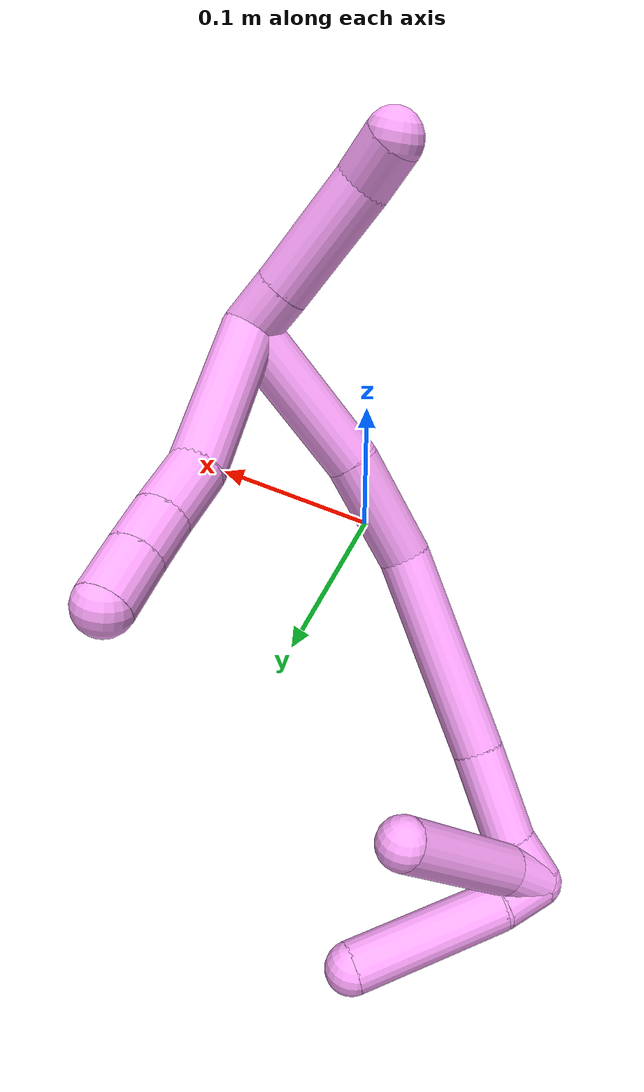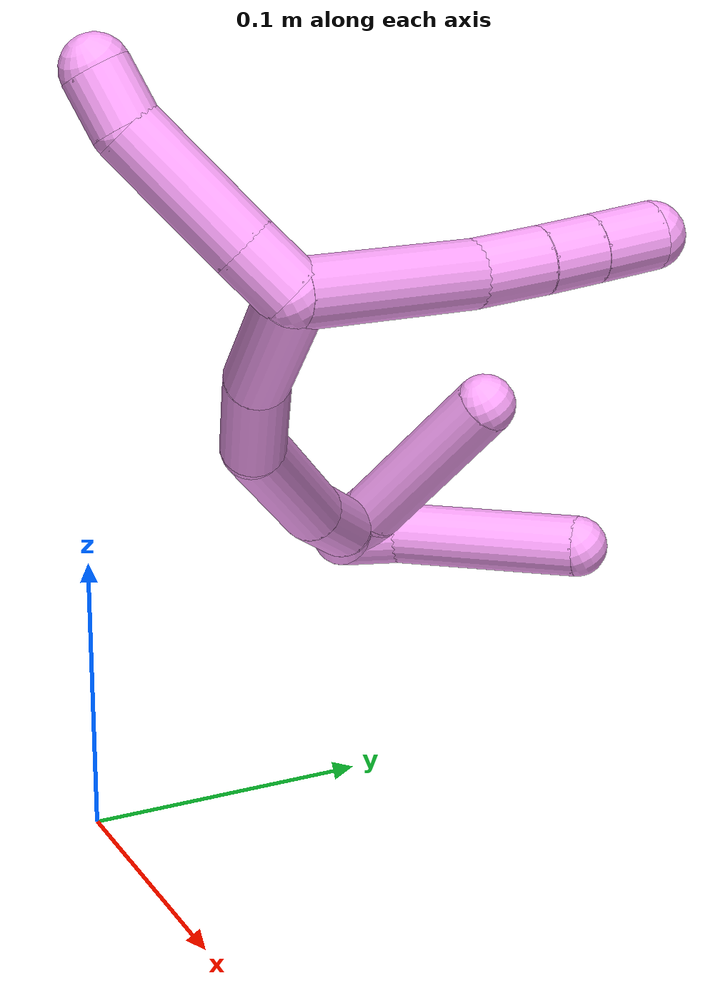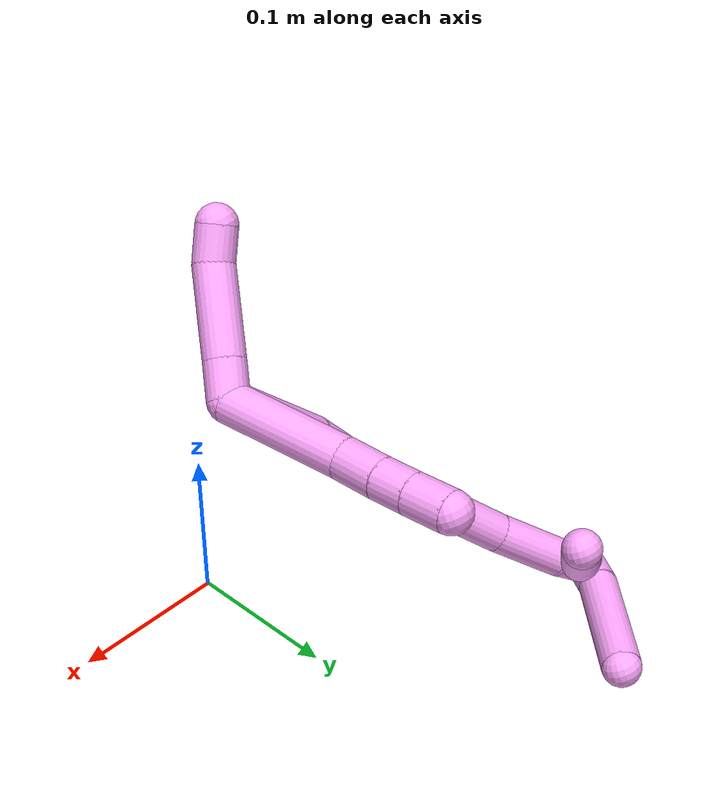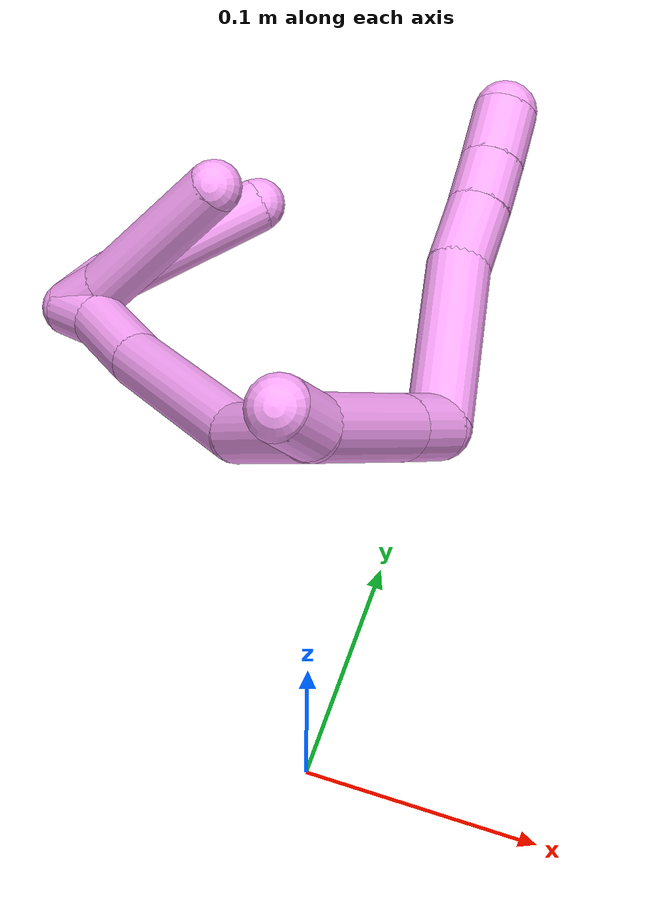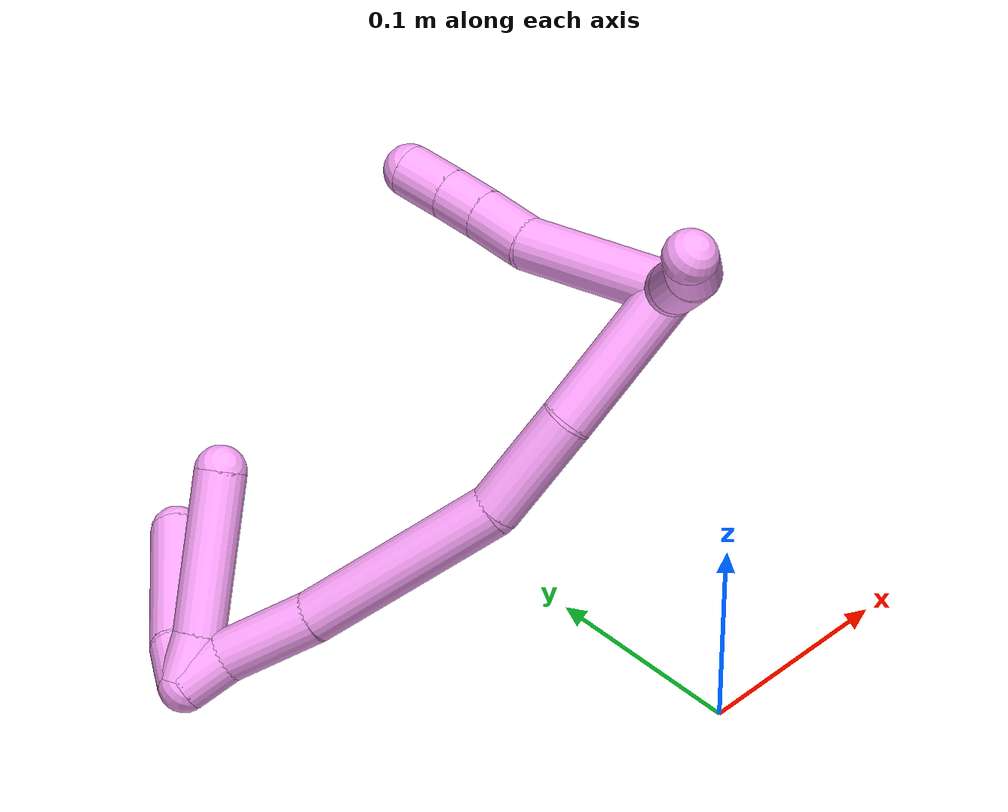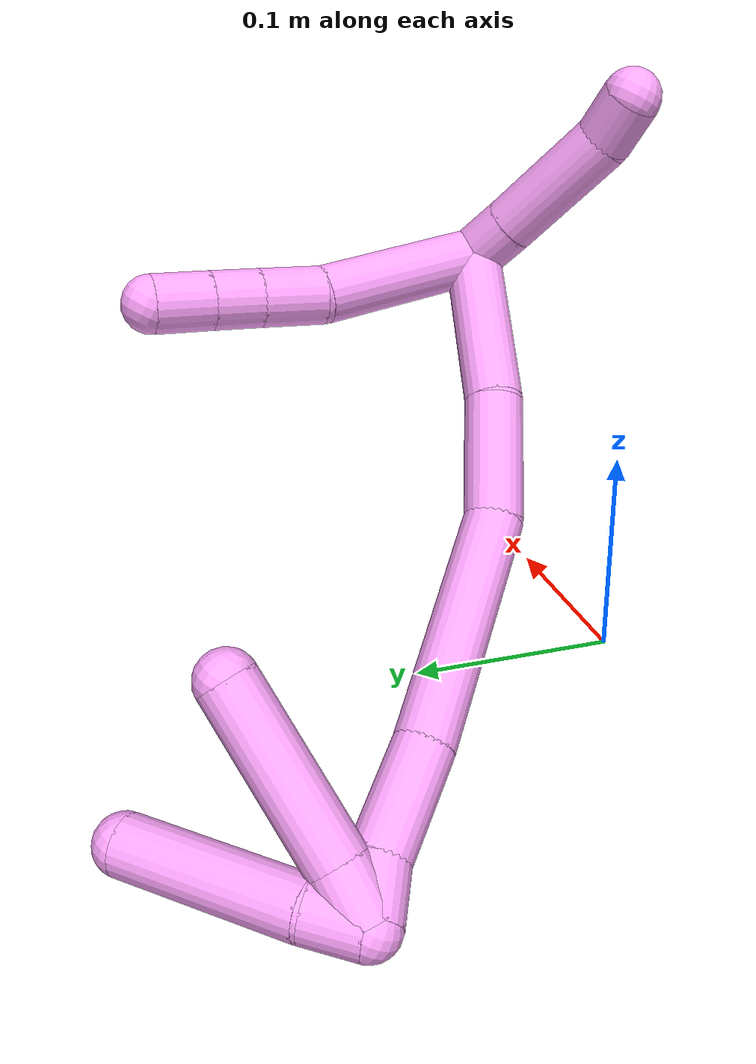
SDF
<sdf version="1.7">
 <world name="default">
  <model name="4">
   <static>0</static>
   <link name="4">
    <collision name="collision-cylinder-e_1_2_8">
     <pose>-0.001969 0.031646 0.021257 -0.97932 -0.051602 0.027506</pose>
     <geometry><cylinder><radius>0.0125</radius><length>0.076347</length></cylinder></geometry>
     <surface>
      <friction><ode><mu>1.16</mu><mu2>1.16</mu2><slip1>0</slip1><slip2>0</slip2></ode></friction>
      <contact><ode><kp>1e+06</kp><kd>1</kd><max_vel>0</max_vel><min_depth>0.001</min_depth></ode></contact>
     </surface>
    </collision>
    <visual name="visual-cylinder-e_1_2_8">
     <pose>-0.001969 0.031646 0.021257 -0.97932 -0.051602 0.027506</pose>
     <geometry><cylinder><radius>0.0125</radius><length>0.076347</length></cylinder></geometry>
     <material><ambient>1 0.65098 0.996078 1</ambient></material>
    </visual>
    <collision name="collision-cylinder-e_2_8_9">
     <pose>-0.007293 0.075173 0.048482 -1.10526 -0.247205 0.15294</pose>
     <geometry><cylinder><radius>0.0125</radius><length>0.027426</length></cylinder></geometry>
     <surface>
      <friction><ode><mu>1.16</mu><mu2>1.16</mu2><slip1>0</slip1><slip2>0</slip2></ode></friction>
      <contact><ode><kp>1e+06</kp><kd>1</kd><max_vel>0</max_vel><min_depth>0.001</min_depth></ode></contact>
     </surface>
    </collision>
    <visual name="visual-cylinder-e_2_8_9">
     <pose>-0.007293 0.075173 0.048482 -1.10526 -0.247205 0.15294</pose>
     <geometry><cylinder><radius>0.0125</radius><length>0.027426</length></cylinder></geometry>
     <material><ambient>1 0.65098 0.996078 1</ambient></material>
    </visual>
    <collision name="collision-cylinder-e_3_9_10">
     <pose>-0.012828 0.096362 0.059026 -1.11395 -0.207072 0.129236</pose>
     <geometry><cylinder><radius>0.0125</radius><length>0.021196</length></cylinder></geometry>
     <surface>
      <friction><ode><mu>1.16</mu><mu2>1.16</mu2><slip1>0</slip1><slip2>0</slip2></ode></friction>
      <contact><ode><kp>1e+06</kp><kd>1</kd><max_vel>0</max_vel><min_depth>0.001</min_depth></ode></contact>
     </surface>
    </collision>
    <visual name="visual-cylinder-e_3_9_10">
     <pose>-0.012828 0.096362 0.059026 -1.11395 -0.207072 0.129236</pose>
     <geometry><cylinder><radius>0.0125</radius><length>0.021196</length></cylinder></geometry>
     <material><ambient>1 0.65098 0.996078 1</ambient></material>
    </visual>
    <collision name="collision-cylinder-e_4_10_6">
     <pose>-0.017335 0.116708 0.069021 -1.11431 -0.187131 0.11679</pose>
     <geometry><cylinder><radius>0.0125</radius><length>0.025032</length></cylinder></geometry>
     <surface>
      <friction><ode><mu>1.16</mu><mu2>1.16</mu2><slip1>0</slip1><slip2>0</slip2></ode></friction>
      <contact><ode><kp>1e+06</kp><kd>1</kd><max_vel>0</max_vel><min_depth>0.001</min_depth></ode></contact>
     </surface>
    </collision>
    <visual name="visual-cylinder-e_4_10_6">
     <pose>-0.017335 0.116708 0.069021 -1.11431 -0.187131 0.11679</pose>
     <geometry><cylinder><radius>0.0125</radius><length>0.025032</length></cylinder></geometry>
     <material><ambient>1 0.65098 0.996078 1</ambient></material>
    </visual>
    <collision name="collision-cylinder-e_1_2_11">
     <pose>0.005895 -0.000577 -0.00991 3.08339 0.535895 2.93034</pose>
     <geometry><cylinder><radius>0.0125</radius><length>0.02309</length></cylinder></geometry>
     <surface>
      <friction><ode><mu>1.16</mu><mu2>1.16</mu2><slip1>0</slip1><slip2>0</slip2></ode></friction>
      <contact><ode><kp>1e+06</kp><kd>1</kd><max_vel>0</max_vel><min_depth>0.001</min_depth></ode></contact>
     </surface>
    </collision>
    <visual name="visual-cylinder-e_1_2_11">
     <pose>0.005895 -0.000577 -0.00991 3.08339 0.535895 2.93034</pose>
     <geometry><cylinder><radius>0.0125</radius><length>0.02309</length></cylinder></geometry>
     <material><ambient>1 0.65098 0.996078 1</ambient></material>
    </visual>
    <collision name="collision-cylinder-e_2_11_12">
     <pose>0.025171 -0.002336 -0.043824 3.09241 0.508001 2.95267</pose>
     <geometry><cylinder><radius>0.0125</radius><length>0.055016</length></cylinder></geometry>
     <surface>
      <friction><ode><mu>1.16</mu><mu2>1.16</mu2><slip1>0</slip1><slip2>0</slip2></ode></friction>
      <contact><ode><kp>1e+06</kp><kd>1</kd><max_vel>0</max_vel><min_depth>0.001</min_depth></ode></contact>
     </surface>
    </collision>
    <visual name="visual-cylinder-e_2_11_12">
     <pose>0.025171 -0.002336 -0.043824 3.09241 0.508001 2.95267</pose>
     <geometry><cylinder><radius>0.0125</radius><length>0.055016</length></cylinder></geometry>
     <material><ambient>1 0.65098 0.996078 1</ambient></material>
    </visual>
    <collision name="collision-cylinder-e_3_12_5">
     <pose>0.04323 -0.000761 -0.077335 -2.85935 0.441571 -2.01297</pose>
     <geometry><cylinder><radius>0.0125</radius><length>0.021894</length></cylinder></geometry>
     <surface>
      <friction><ode><mu>1.16</mu><mu2>1.16</mu2><slip1>0</slip1><slip2>0</slip2></ode></friction>
      <contact><ode><kp>1e+06</kp><kd>1</kd><max_vel>0</max_vel><min_depth>0.001</min_depth></ode></contact>
     </surface>
    </collision>
    <visual name="visual-cylinder-e_3_12_5">
     <pose>0.04323 -0.000761 -0.077335 -2.85935 0.441571 -2.01297</pose>
     <geometry><cylinder><radius>0.0125</radius><length>0.021894</length></cylinder></geometry>
     <material><ambient>1 0.65098 0.996078 1</ambient></material>
    </visual>
    <collision name="collision-cylinder-e_1_2_13">
     <pose>0.027485 0.000252 0.025034 -0.010066 0.832018 -0.004447</pose>
     <geometry><cylinder><radius>0.0125</radius><length>0.074355</length></cylinder></geometry>
     <surface>
      <friction><ode><mu>1.16</mu><mu2>1.16</mu2><slip1>0</slip1><slip2>0</slip2></ode></friction>
      <contact><ode><kp>1e+06</kp><kd>1</kd><max_vel>0</max_vel><min_depth>0.001</min_depth></ode></contact>
     </surface>
    </collision>
    <visual name="visual-cylinder-e_1_2_13">
     <pose>0.027485 0.000252 0.025034 -0.010066 0.832018 -0.004447</pose>
     <geometry><cylinder><radius>0.0125</radius><length>0.074355</length></cylinder></geometry>
     <material><ambient>1 0.65098 0.996078 1</ambient></material>
    </visual>
    <collision name="collision-cylinder-e_2_13_14">
     <pose>0.071487 0.000993 0.071041 -0.023295 0.666932 -0.00807</pose>
     <geometry><cylinder><radius>0.0125</radius><length>0.053402</length></cylinder></geometry>
     <surface>
      <friction><ode><mu>1.16</mu><mu2>1.16</mu2><slip1>0</slip1><slip2>0</slip2></ode></friction>
      <contact><ode><kp>1e+06</kp><kd>1</kd><max_vel>0</max_vel><min_depth>0.001</min_depth></ode></contact>
     </surface>
    </collision>
    <visual name="visual-cylinder-e_2_13_14">
     <pose>0.071487 0.000993 0.071041 -0.023295 0.666932 -0.00807</pose>
     <geometry><cylinder><radius>0.0125</radius><length>0.053402</length></cylinder></geometry>
     <material><ambient>1 0.65098 0.996078 1</ambient></material>
    </visual>
    <collision name="collision-cylinder-e_3_14_15">
     <pose>0.11526 0.018795 0.131072 -0.417262 0.567893 -0.123412</pose>
     <geometry><cylinder><radius>0.0125</radius><length>0.101353</length></cylinder></geometry>
     <surface>
      <friction><ode><mu>1.16</mu><mu2>1.16</mu2><slip1>0</slip1><slip2>0</slip2></ode></friction>
      <contact><ode><kp>1e+06</kp><kd>1</kd><max_vel>0</max_vel><min_depth>0.001</min_depth></ode></contact>
     </surface>
    </collision>
    <visual name="visual-cylinder-e_3_14_15">
     <pose>0.11526 0.018795 0.131072 -0.417262 0.567893 -0.123412</pose>
     <geometry><cylinder><radius>0.0125</radius><length>0.101353</length></cylinder></geometry>
     <material><ambient>1 0.65098 0.996078 1</ambient></material>
    </visual>
    <collision name="collision-cylinder-e_4_15_16">
     <pose>0.154579 0.046309 0.187342 -0.534943 0.542499 -0.152128</pose>
     <geometry><cylinder><radius>0.0125</radius><length>0.046728</length></cylinder></geometry>
     <surface>
      <friction><ode><mu>1.16</mu><mu2>1.16</mu2><slip1>0</slip1><slip2>0</slip2></ode></friction>
      <contact><ode><kp>1e+06</kp><kd>1</kd><max_vel>0</max_vel><min_depth>0.001</min_depth></ode></contact>
     </surface>
    </collision>
    <visual name="visual-cylinder-e_4_15_16">
     <pose>0.154579 0.046309 0.187342 -0.534943 0.542499 -0.152128</pose>
     <geometry><cylinder><radius>0.0125</radius><length>0.046728</length></cylinder></geometry>
     <material><ambient>1 0.65098 0.996078 1</ambient></material>
    </visual>
    <collision name="collision-cylinder-e_5_16_1">
     <pose>0.175058 0.059974 0.2125 -0.411257 0.77077 -0.168824</pose>
     <geometry><cylinder><radius>0.0125</radius><length>0.024162</length></cylinder></geometry>
     <surface>
      <friction><ode><mu>1.16</mu><mu2>1.16</mu2><slip1>0</slip1><slip2>0</slip2></ode></friction>
      <contact><ode><kp>1e+06</kp><kd>1</kd><max_vel>0</max_vel><min_depth>0.001</min_depth></ode></contact>
     </surface>
    </collision>
    <visual name="visual-cylinder-e_5_16_1">
     <pose>0.175058 0.059974 0.2125 -0.411257 0.77077 -0.168824</pose>
     <geometry><cylinder><radius>0.0125</radius><length>0.024162</length></cylinder></geometry>
     <material><ambient>1 0.65098 0.996078 1</ambient></material>
    </visual>
    <collision name="collision-cylinder-e_1_1_17">
     <pose>0.174712 0.070622 0.223811 -1.13247 -0.835048 0.549701</pose>
     <geometry><cylinder><radius>0.0125</radius><length>0.023642</length></cylinder></geometry>
     <surface>
      <friction><ode><mu>1.16</mu><mu2>1.16</mu2><slip1>0</slip1><slip2>0</slip2></ode></friction>
      <contact><ode><kp>1e+06</kp><kd>1</kd><max_vel>0</max_vel><min_depth>0.001</min_depth></ode></contact>
     </surface>
    </collision>
    <visual name="visual-cylinder-e_1_1_17">
     <pose>0.174712 0.070622 0.223811 -1.13247 -0.835048 0.549701</pose>
     <geometry><cylinder><radius>0.0125</radius><length>0.023642</length></cylinder></geometry>
     <material><ambient>1 0.65098 0.996078 1</ambient></material>
    </visual>
    <collision name="collision-cylinder-e_2_17_4">
     <pose>0.134051 0.095568 0.238343 -1.00965 -0.98901 0.579148</pose>
     <geometry><cylinder><radius>0.0125</radius><length>0.076358</length></cylinder></geometry>
     <surface>
      <friction><ode><mu>1.16</mu><mu2>1.16</mu2><slip1>0</slip1><slip2>0</slip2></ode></friction>
      <contact><ode><kp>1e+06</kp><kd>1</kd><max_vel>0</max_vel><min_depth>0.001</min_depth></ode></contact>
     </surface>
    </collision>
    <visual name="visual-cylinder-e_2_17_4">
     <pose>0.134051 0.095568 0.238343 -1.00965 -0.98901 0.579148</pose>
     <geometry><cylinder><radius>0.0125</radius><length>0.076358</length></cylinder></geometry>
     <material><ambient>1 0.65098 0.996078 1</ambient></material>
    </visual>
    <collision name="collision-cylinder-e_1_1_18">
     <pose>0.174079 0.067848 0.214692 -2.48767 -0.913758 1.93375</pose>
     <geometry><cylinder><radius>0.0125</radius><length>0.023733</length></cylinder></geometry>
     <surface>
      <friction><ode><mu>1.16</mu><mu2>1.16</mu2><slip1>0</slip1><slip2>0</slip2></ode></friction>
      <contact><ode><kp>1e+06</kp><kd>1</kd><max_vel>0</max_vel><min_depth>0.001</min_depth></ode></contact>
     </surface>
    </collision>
    <visual name="visual-cylinder-e_1_1_18">
     <pose>0.174079 0.067848 0.214692 -2.48767 -0.913758 1.93375</pose>
     <geometry><cylinder><radius>0.0125</radius><length>0.023733</length></cylinder></geometry>
     <material><ambient>1 0.65098 0.996078 1</ambient></material>
    </visual>
    <collision name="collision-cylinder-e_2_18_3">
     <pose>0.137733 0.091705 0.190241 -2.33653 -0.784859 1.5425</pose>
     <geometry><cylinder><radius>0.0125</radius><length>0.076267</length></cylinder></geometry>
     <surface>
      <friction><ode><mu>1.16</mu><mu2>1.16</mu2><slip1>0</slip1><slip2>0</slip2></ode></friction>
      <contact><ode><kp>1e+06</kp><kd>1</kd><max_vel>0</max_vel><min_depth>0.001</min_depth></ode></contact>
     </surface>
    </collision>
    <visual name="visual-cylinder-e_2_18_3">
     <pose>0.137733 0.091705 0.190241 -2.33653 -0.784859 1.5425</pose>
     <geometry><cylinder><radius>0.0125</radius><length>0.076267</length></cylinder></geometry>
     <material><ambient>1 0.65098 0.996078 1</ambient></material>
    </visual>
    <collision name="collision-sphere-3">
     <pose>0.110783 0.111153 0.171543 0 -0 0</pose>
     <geometry><sphere><radius>0.0125</radius></sphere></geometry>
     <surface>
      <friction><ode><mu>1.16</mu><mu2>1.16</mu2><slip1>0</slip1><slip2>0</slip2></ode></friction>
      <contact><ode><kp>1e+06</kp><kd>1</kd><max_vel>0</max_vel><min_depth>0.001</min_depth></ode></contact>
     </surface>
    </collision>
    <visual name="visual-sphere-3">
     <pose>0.110783 0.111153 0.171543 0 -0 0</pose>
     <geometry><sphere><radius>0.0125</radius></sphere></geometry>
     <material><ambient>1 0.65098 0.996078 1</ambient></material>
    </visual>
    <collision name="collision-sphere-11">
     <pose>0.01179 -0.001155 -0.019819 0 -0 0</pose>
     <geometry><sphere><radius>0.0125</radius></sphere></geometry>
     <surface>
      <friction><ode><mu>1.16</mu><mu2>1.16</mu2><slip1>0</slip1><slip2>0</slip2></ode></friction>
      <contact><ode><kp>1e+06</kp><kd>1</kd><max_vel>0</max_vel><min_depth>0.001</min_depth></ode></contact>
     </surface>
    </collision>
    <visual name="visual-sphere-11">
     <pose>0.01179 -0.001155 -0.019819 0 -0 0</pose>
     <geometry><sphere><radius>0.0125</radius></sphere></geometry>
     <material><ambient>1 0.65098 0.996078 1</ambient></material>
    </visual>
    <collision name="collision-sphere-6">
     <pose>-0.019664 0.127747 0.074442 0 -0 0</pose>
     <geometry><sphere><radius>0.0125</radius></sphere></geometry>
     <surface>
      <friction><ode><mu>1.16</mu><mu2>1.16</mu2><slip1>0</slip1><slip2>0</slip2></ode></friction>
      <contact><ode><kp>1e+06</kp><kd>1</kd><max_vel>0</max_vel><min_depth>0.001</min_depth></ode></contact>
     </surface>
    </collision>
    <visual name="visual-sphere-6">
     <pose>-0.019664 0.127747 0.074442 0 -0 0</pose>
     <geometry><sphere><radius>0.0125</radius></sphere></geometry>
     <material><ambient>1 0.65098 0.996078 1</ambient></material>
    </visual>
    <collision name="collision-sphere-10">
     <pose>-0.015007 0.10567 0.063601 0 -0 0</pose>
     <geometry><sphere><radius>0.0125</radius></sphere></geometry>
     <surface>
      <friction><ode><mu>1.16</mu><mu2>1.16</mu2><slip1>0</slip1><slip2>0</slip2></ode></friction>
      <contact><ode><kp>1e+06</kp><kd>1</kd><max_vel>0</max_vel><min_depth>0.001</min_depth></ode></contact>
     </surface>
    </collision>
    <visual name="visual-sphere-10">
     <pose>-0.015007 0.10567 0.063601 0 -0 0</pose>
     <geometry><sphere><radius>0.0125</radius></sphere></geometry>
     <material><ambient>1 0.65098 0.996078 1</ambient></material>
    </visual>
    <collision name="collision-sphere-9">
     <pose>-0.010649 0.087054 0.054451 0 -0 0</pose>
     <geometry><sphere><radius>0.0125</radius></sphere></geometry>
     <surface>
      <friction><ode><mu>1.16</mu><mu2>1.16</mu2><slip1>0</slip1><slip2>0</slip2></ode></friction>
      <contact><ode><kp>1e+06</kp><kd>1</kd><max_vel>0</max_vel><min_depth>0.001</min_depth></ode></contact>
     </surface>
    </collision>
    <visual name="visual-sphere-9">
     <pose>-0.010649 0.087054 0.054451 0 -0 0</pose>
     <geometry><sphere><radius>0.0125</radius></sphere></geometry>
     <material><ambient>1 0.65098 0.996078 1</ambient></material>
    </visual>
    <collision name="collision-sphere-2">
     <geometry><sphere><radius>0.0125</radius></sphere></geometry>
     <surface>
      <friction><ode><mu>1.16</mu><mu2>1.16</mu2><slip1>0</slip1><slip2>0</slip2></ode></friction>
      <contact><ode><kp>1e+06</kp><kd>1</kd><max_vel>0</max_vel><min_depth>0.001</min_depth></ode></contact>
     </surface>
    </collision>
    <visual name="visual-sphere-2">
     <geometry><sphere><radius>0.0125</radius></sphere></geometry>
     <material><ambient>1 0.65098 0.996078 1</ambient></material>
    </visual>
    <collision name="collision-sphere-8">
     <pose>-0.003938 0.063292 0.042513 0 -0 0</pose>
     <geometry><sphere><radius>0.0125</radius></sphere></geometry>
     <surface>
      <friction><ode><mu>1.16</mu><mu2>1.16</mu2><slip1>0</slip1><slip2>0</slip2></ode></friction>
      <contact><ode><kp>1e+06</kp><kd>1</kd><max_vel>0</max_vel><min_depth>0.001</min_depth></ode></contact>
     </surface>
    </collision>
    <visual name="visual-sphere-8">
     <pose>-0.003938 0.063292 0.042513 0 -0 0</pose>
     <geometry><sphere><radius>0.0125</radius></sphere></geometry>
     <material><ambient>1 0.65098 0.996078 1</ambient></material>
    </visual>
    <collision name="collision-sphere-12">
     <pose>0.038551 -0.003518 -0.06783 0 -0 0</pose>
     <geometry><sphere><radius>0.0125</radius></sphere></geometry>
     <surface>
      <friction><ode><mu>1.16</mu><mu2>1.16</mu2><slip1>0</slip1><slip2>0</slip2></ode></friction>
      <contact><ode><kp>1e+06</kp><kd>1</kd><max_vel>0</max_vel><min_depth>0.001</min_depth></ode></contact>
     </surface>
    </collision>
    <visual name="visual-sphere-12">
     <pose>0.038551 -0.003518 -0.06783 0 -0 0</pose>
     <geometry><sphere><radius>0.0125</radius></sphere></geometry>
     <material><ambient>1 0.65098 0.996078 1</ambient></material>
    </visual>
    <collision name="collision-sphere-5">
     <pose>0.047908 0.001995 -0.086841 0 -0 0</pose>
     <geometry><sphere><radius>0.0125</radius></sphere></geometry>
     <surface>
      <friction><ode><mu>1.16</mu><mu2>1.16</mu2><slip1>0</slip1><slip2>0</slip2></ode></friction>
      <contact><ode><kp>1e+06</kp><kd>1</kd><max_vel>0</max_vel><min_depth>0.001</min_depth></ode></contact>
     </surface>
    </collision>
    <visual name="visual-sphere-5">
     <pose>0.047908 0.001995 -0.086841 0 -0 0</pose>
     <geometry><sphere><radius>0.0125</radius></sphere></geometry>
     <material><ambient>1 0.65098 0.996078 1</ambient></material>
    </visual>
    <collision name="collision-sphere-13">
     <pose>0.05497 0.000504 0.050067 0 -0 0</pose>
     <geometry><sphere><radius>0.0125</radius></sphere></geometry>
     <surface>
      <friction><ode><mu>1.16</mu><mu2>1.16</mu2><slip1>0</slip1><slip2>0</slip2></ode></friction>
      <contact><ode><kp>1e+06</kp><kd>1</kd><max_vel>0</max_vel><min_depth>0.001</min_depth></ode></contact>
     </surface>
    </collision>
    <visual name="visual-sphere-13">
     <pose>0.05497 0.000504 0.050067 0 -0 0</pose>
     <geometry><sphere><radius>0.0125</radius></sphere></geometry>
     <material><ambient>1 0.65098 0.996078 1</ambient></material>
    </visual>
    <collision name="collision-sphere-14">
     <pose>0.088003 0.001481 0.092015 0 -0 0</pose>
     <geometry><sphere><radius>0.0125</radius></sphere></geometry>
     <surface>
      <friction><ode><mu>1.16</mu><mu2>1.16</mu2><slip1>0</slip1><slip2>0</slip2></ode></friction>
      <contact><ode><kp>1e+06</kp><kd>1</kd><max_vel>0</max_vel><min_depth>0.001</min_depth></ode></contact>
     </surface>
    </collision>
    <visual name="visual-sphere-14">
     <pose>0.088003 0.001481 0.092015 0 -0 0</pose>
     <geometry><sphere><radius>0.0125</radius></sphere></geometry>
     <material><ambient>1 0.65098 0.996078 1</ambient></material>
    </visual>
    <collision name="collision-sphere-15">
     <pose>0.142517 0.036108 0.170128 0 -0 0</pose>
     <geometry><sphere><radius>0.0125</radius></sphere></geometry>
     <surface>
      <friction><ode><mu>1.16</mu><mu2>1.16</mu2><slip1>0</slip1><slip2>0</slip2></ode></friction>
      <contact><ode><kp>1e+06</kp><kd>1</kd><max_vel>0</max_vel><min_depth>0.001</min_depth></ode></contact>
     </surface>
    </collision>
    <visual name="visual-sphere-15">
     <pose>0.142517 0.036108 0.170128 0 -0 0</pose>
     <geometry><sphere><radius>0.0125</radius></sphere></geometry>
     <material><ambient>1 0.65098 0.996078 1</ambient></material>
    </visual>
    <collision name="collision-sphere-16">
     <pose>0.166641 0.05651 0.204556 0 -0 0</pose>
     <geometry><sphere><radius>0.0125</radius></sphere></geometry>
     <surface>
      <friction><ode><mu>1.16</mu><mu2>1.16</mu2><slip1>0</slip1><slip2>0</slip2></ode></friction>
      <contact><ode><kp>1e+06</kp><kd>1</kd><max_vel>0</max_vel><min_depth>0.001</min_depth></ode></contact>
     </surface>
    </collision>
    <visual name="visual-sphere-16">
     <pose>0.166641 0.05651 0.204556 0 -0 0</pose>
     <geometry><sphere><radius>0.0125</radius></sphere></geometry>
     <material><ambient>1 0.65098 0.996078 1</ambient></material>
    </visual>
    <collision name="collision-sphere-1">
     <pose>0.183475 0.063439 0.220444 0 -0 0</pose>
     <geometry><sphere><radius>0.0125</radius></sphere></geometry>
     <surface>
      <friction><ode><mu>1.16</mu><mu2>1.16</mu2><slip1>0</slip1><slip2>0</slip2></ode></friction>
      <contact><ode><kp>1e+06</kp><kd>1</kd><max_vel>0</max_vel><min_depth>0.001</min_depth></ode></contact>
     </surface>
    </collision>
    <visual name="visual-sphere-1">
     <pose>0.183475 0.063439 0.220444 0 -0 0</pose>
     <geometry><sphere><radius>0.0125</radius></sphere></geometry>
     <material><ambient>1 0.65098 0.996078 1</ambient></material>
    </visual>
    <collision name="collision-sphere-18">
     <pose>0.164683 0.072257 0.208939 0 -0 0</pose>
     <geometry><sphere><radius>0.0125</radius></sphere></geometry>
     <surface>
      <friction><ode><mu>1.16</mu><mu2>1.16</mu2><slip1>0</slip1><slip2>0</slip2></ode></friction>
      <contact><ode><kp>1e+06</kp><kd>1</kd><max_vel>0</max_vel><min_depth>0.001</min_depth></ode></contact>
     </surface>
    </collision>
    <visual name="visual-sphere-18">
     <pose>0.164683 0.072257 0.208939 0 -0 0</pose>
     <geometry><sphere><radius>0.0125</radius></sphere></geometry>
     <material><ambient>1 0.65098 0.996078 1</ambient></material>
    </visual>
    <collision name="collision-sphere-17">
     <pose>0.165949 0.077806 0.227178 0 -0 0</pose>
     <geometry><sphere><radius>0.0125</radius></sphere></geometry>
     <surface>
      <friction><ode><mu>1.16</mu><mu2>1.16</mu2><slip1>0</slip1><slip2>0</slip2></ode></friction>
      <contact><ode><kp>1e+06</kp><kd>1</kd><max_vel>0</max_vel><min_depth>0.001</min_depth></ode></contact>
     </surface>
    </collision>
    <visual name="visual-sphere-17">
     <pose>0.165949 0.077806 0.227178 0 -0 0</pose>
     <geometry><sphere><radius>0.0125</radius></sphere></geometry>
     <material><ambient>1 0.65098 0.996078 1</ambient></material>
    </visual>
    <collision name="collision-sphere-4">
     <pose>0.102152 0.113331 0.249508 0 -0 0</pose>
     <geometry><sphere><radius>0.0125</radius></sphere></geometry>
     <surface>
      <friction><ode><mu>1.16</mu><mu2>1.16</mu2><slip1>0</slip1><slip2>0</slip2></ode></friction>
      <contact><ode><kp>1e+06</kp><kd>1</kd><max_vel>0</max_vel><min_depth>0.001</min_depth></ode></contact>
     </surface>
    </collision>
    <visual name="visual-sphere-4">
     <pose>0.102152 0.113331 0.249508 0 -0 0</pose>
     <geometry><sphere><radius>0.0125</radius></sphere></geometry>
     <material><ambient>1 0.65098 0.996078 1</ambient></material>
    </visual>
    <inertial>
     <pose>0.079213 0.043259 0.103362 0 -0 0</pose>
     <mass>0.75</mass>
     <inertia>
      <ixx>0.000212</ixx>
      <ixy>0</ixy>
      <ixz>0</ixz>
      <iyy>0.000305</iyy>
      <iyz>0</iyz>
      <izz>-0.000135</izz>
     </inertia>
    </inertial>
   </link>
   <pose>0.028136 0.065804 0.196932 2.66239 0.103238 -2.87866</pose>
  </model>
 </world>
</sdf>
